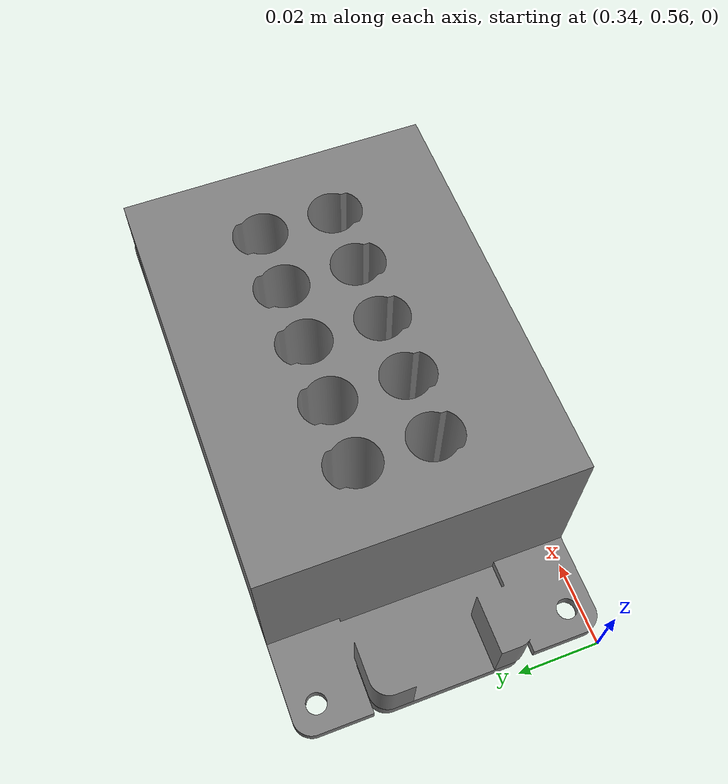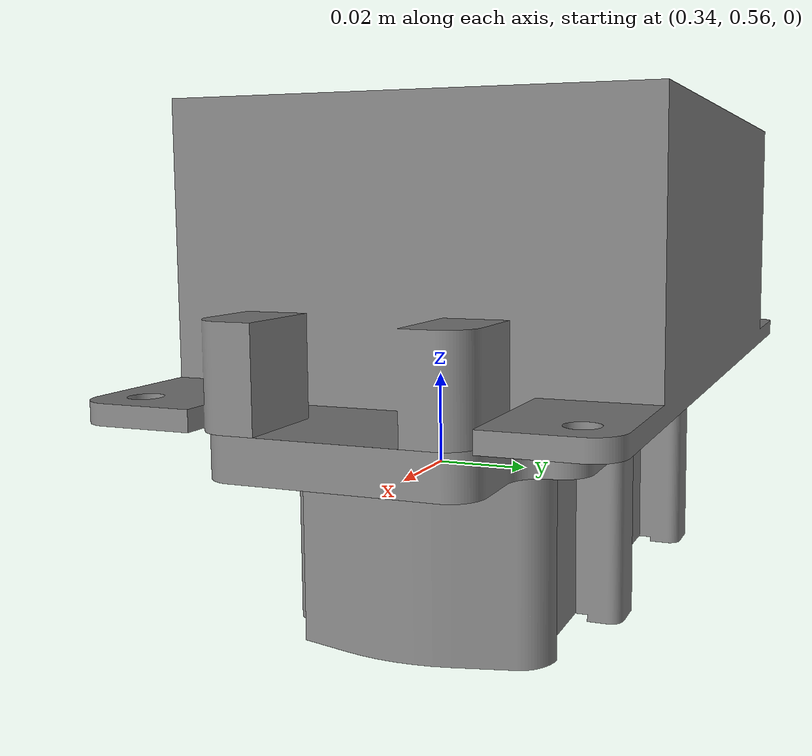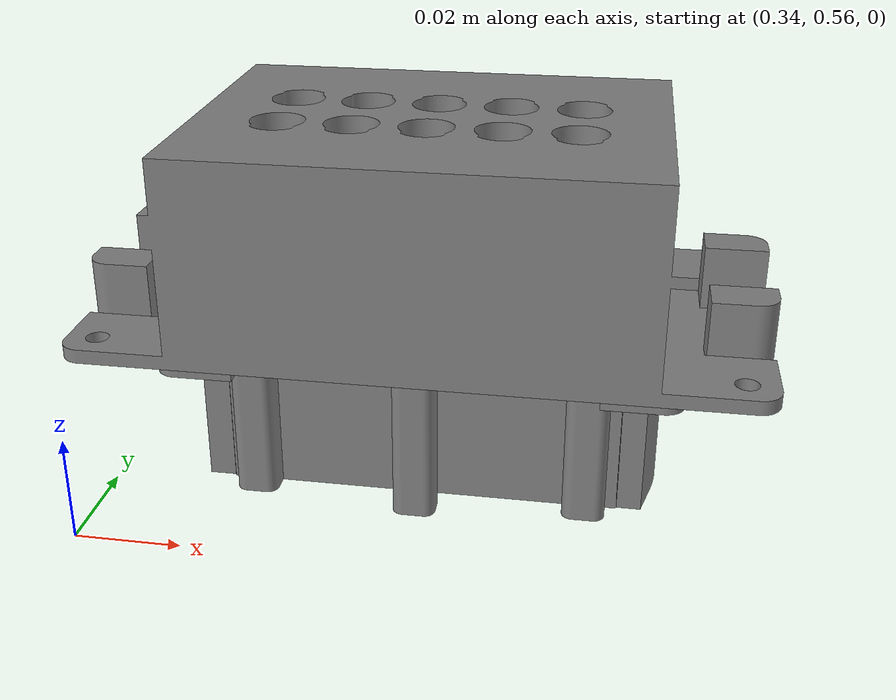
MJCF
<?xml version="1.0" ?>
<mujoco>
   <asset>
      <mesh name="Male_NIST_007" file="Male_NIST/Male_NIST_007.stl"/>
      <mesh name="Male_NIST_002" file="Male_NIST/Male_NIST_002.stl"/>
      <mesh name="Male_NIST_006C" file="Male_NIST/Male_NIST_006C.stl"/>
      <mesh name="Male_NIST_005C" file="Male_NIST/Male_NIST_005C.stl"/>
      <mesh name="Male_NIST_006" file="Male_NIST/Male_NIST_006.stl"/>
      <mesh name="Male_NIST_003" file="Male_NIST/Male_NIST_003.stl"/>
      <mesh name="Male_NIST_004" file="Male_NIST/Male_NIST_004.stl"/>
      <mesh name="Male_NIST_001" file="Male_NIST/Male_NIST_001.stl"/>
      <mesh name="Male_NIST_007C" file="Male_NIST/Male_NIST_007C.stl"/>
      <mesh name="Male_NIST_005" file="Male_NIST/Male_NIST_005.stl"/>
      <mesh name="Male_NIST_003C" file="Male_NIST/Male_NIST_003C.stl"/>
   </asset>
   <worldbody>
      <body name="nist_male" pos="0.4 0.6 -0.0515">
         <freejoint name="free_joint_male"/>
         <inertial pos="0 0 0" mass="0.1" diaginertia="0.001 0.001 0.001"/>
         <geom name="Male_NIST_007" type="mesh" mesh="Male_NIST_007" pos="0 0 0" conaffinity="1" contype="1"/>
         <geom name="Male_NIST_002" type="mesh" mesh="Male_NIST_002" pos="0 0 0" conaffinity="1" contype="1"/>
         <geom name="Male_NIST_006C" type="mesh" mesh="Male_NIST_006C" pos="0 0 0" conaffinity="1" contype="1"/>
         <geom name="Male_NIST_005C" type="mesh" mesh="Male_NIST_005C" pos="0 0 0" conaffinity="1" contype="1"/>
         <geom name="Male_NIST_006" type="mesh" mesh="Male_NIST_006" pos="0 0 0" conaffinity="1" contype="1"/>
         <geom name="Male_NIST_003" type="mesh" mesh="Male_NIST_003" pos="0 0 0" conaffinity="1" contype="1"/>
         <geom name="Male_NIST_004" type="mesh" mesh="Male_NIST_004" pos="0 0 0" conaffinity="1" contype="1"/>
         <geom name="Male_NIST_001" type="mesh" mesh="Male_NIST_001" pos="0 0 0" conaffinity="1" contype="1"/>
         <geom name="Male_NIST_007C" type="mesh" mesh="Male_NIST_007C" pos="0 0 0" conaffinity="1" contype="1"/>
         <geom name="Male_NIST_005" type="mesh" mesh="Male_NIST_005" pos="0 0 0" conaffinity="1" contype="1"/>
         <geom name="Male_NIST_003C" type="mesh" mesh="Male_NIST_003C" pos="0 0 0" conaffinity="1" contype="1"/>
      </body>
   </worldbody>
</mujoco>
